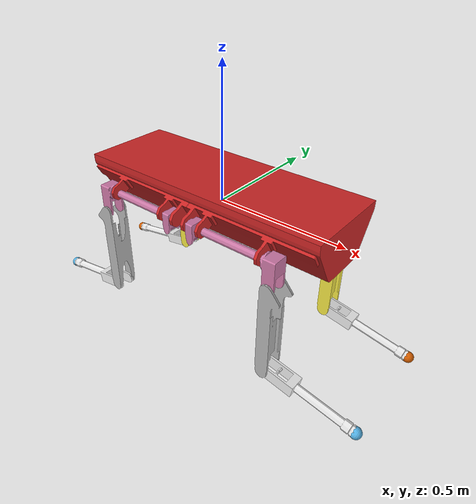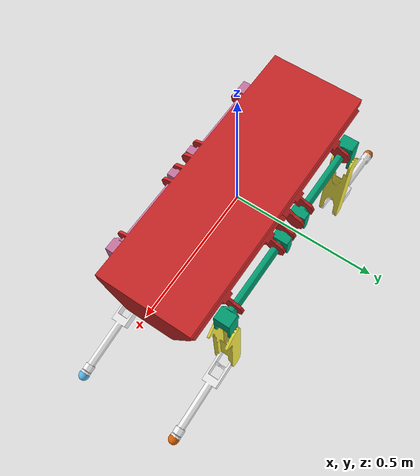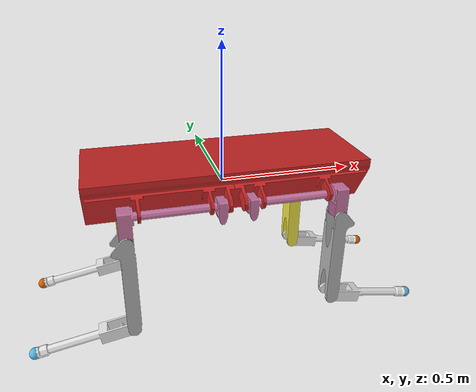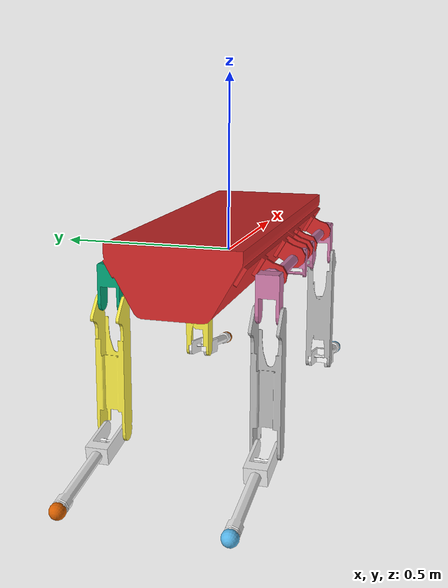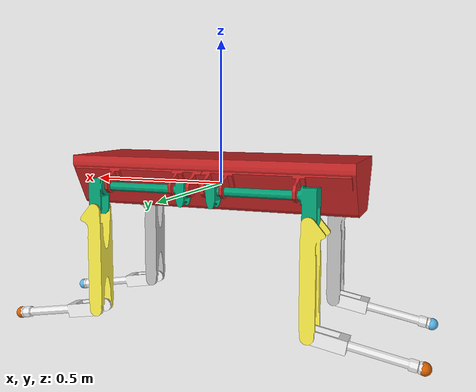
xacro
<?xml version="1.0"?>

<robot name="hyq" xmlns:xacro="http://www.ros.org/wiki/xacro">

  <xacro:property name="PI" value="3.1415926535897931"/>
  <xacro:property name="d_lr" value="0.414"/>
  <xacro:property name="d_fh" value="0.747"/>
  <xacro:property name="d_tbb" value="0.082"/>
  <xacro:property name="d_p1p2" value="0.35"/>

	<!-- HyQ trunk -->
	<xacro:include filename="$(find quadruped)/urdf/trunk.urdf.xacro"/>

	<!-- HyQ legs -->
	<xacro:include filename="$(find quadruped)/urdf/leg.urdf.xacro"/>
 	 <xacro:include filename="$(find quadruped)/urdf/quadruped.gazebo" />

	<!-- Using the macros defined above -->
	<!-- trunk -->
	<xacro:hyq_trunk name="base"/>

	<!-- LF leg -->
	<xacro:hyq_leg
		name="lf"
		parent="trunk"
		reflect_hip="1"
		reflect_upper="1"
		reflect_front="1">
		<origin xyz="${d_fh/2} ${d_lr/2} 0" rpy="0 ${PI/2} ${PI}"/>
	</xacro:hyq_leg>

	<!-- RF leg -->
	<xacro:hyq_leg
		name="rf"
		parent="trunk"
		reflect_hip="-1"
		reflect_upper="-1"
		reflect_front="1">
		<origin xyz="${d_fh/2} ${-d_lr/2} 0" rpy="0 ${PI/2} 0"/>
	</xacro:hyq_leg>

	<!-- LH leg -->
	<xacro:hyq_leg
		name="lh"
		parent="trunk"
		reflect_hip="-1"
		reflect_upper="1"
		reflect_front="-1">
		<origin xyz="${-d_fh/2} ${d_lr/2} 0" rpy="0 ${PI/2} ${PI}"/>
	</xacro:hyq_leg>

	<!-- RH leg -->
	<xacro:hyq_leg
		name="rh"
		parent="trunk"
		reflect_hip="1"
		reflect_upper="-1"
		reflect_front="-1">
		<origin xyz="${-d_fh/2} ${-d_lr/2} 0" rpy="0 ${PI/2} 0"/>
	</xacro:hyq_leg>

</robot>

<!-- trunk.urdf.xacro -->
<robot xmlns:xacro="http://www.ros.org/wiki/xacro">

	<!-- trunk macro definition -->
	<xacro:macro name="hyq_trunk" params="name">

		<!-- Floating-base Joint -->
		<joint name="floating_base" type="fixed">
			<origin xyz="0 0 0" rpy="0 0 0"/>
			<parent link="${name}"/>
			<child link="trunk"/>
		</joint>

		<!-- Footprint link -->
		<link name="${name}">
			<inertial >
				<origin xyz="0 0 0" rpy="0 0 0"/>
				<mass value="0.0001" />
				<inertia ixx="1.6e-08" ixy="0.0" ixz="0.0" iyy="1.6e-08" iyz="0.0" izz="1.6e-08"/>
			</inertial>
			<collision>
				<origin xyz="0 0 0" rpy="0 0 0"/>
				<geometry>
					<sphere radius="0.020"/>
				</geometry>
			</collision>

			<visual>
				<geometry>
					<cylinder length="0.01" radius="0.01"/>
				</geometry>
			</visual>
		</link>

		<!-- Trunk link -->
		<link name="trunk">
			<inertial>
				<origin xyz="0 0 0" rpy="0 0 0"/>
				<mass value="0.5" />
				<inertia ixx="0.140906974933" ixy="0.0" ixz="0.0" iyy="0.1529597616" iyz="0.0" izz="0.0218659333333"/>
			</inertial>
			<collision>
				<origin rpy="0.0 0.0 0.0" xyz="0.0 0.0 0.0"/>
			<geometry>
					<mesh filename="package://my_legged_robots_description/meshes/trunk/trunk.dae" scale="1 1 1"/>
			</geometry>
			</collision>
			<visual>
				<geometry>
					<mesh filename="package://my_legged_robots_description/meshes/trunk/trunk.dae" scale="1 1 1"/>
				</geometry>
			</visual>

		</link>

	</xacro:macro>

</robot>

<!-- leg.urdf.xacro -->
<robot xmlns:xacro="http://www.ros.org/wiki/xacro">

	<!-- leg macro definiction -->
	<xacro:macro name="hyq_leg" params="name parent *origin reflect_hip reflect_upper reflect_front">
		<!-- Joints -->
		<!-- Hip assembly joint -->
		<joint name="${name}_haa_joint" type="revolute">
			<xacro:insert_block name="origin"/>
			<parent link="${parent}"/>
			<child  link="${name}_hipassembly"/>
			<axis xyz="0 0 1"/>
			<limit effort="1.00" velocity="10" lower="${-7*PI/18}" upper="${PI/6}"/>
		</joint>

		<!-- Upper leg joint -->
		<joint name="${name}_hfe_joint" type="revolute">
			<origin xyz="${d_tbb} 0 0" rpy="${reflect_upper*PI/2} 0 0"/>
			<parent link="${name}_hipassembly"/>
			<child  link="${name}_upperleg"/>
			<axis xyz="0 0 1"/>
			<limit effort="1.00" velocity="10"
          lower="${-(1+reflect_front)*5*PI/36-(1-reflect_front)*7*PI/36}"
          upper="${(1-reflect_front)*5*PI/36+(1+reflect_front)*7*PI/36}"/>
		</joint>

		<!-- Lower leg joint -->
		<joint name="${name}_kfe_joint" type="revolute">
			<origin xyz="${d_p1p2} 0 0" rpy="0 0 0"/>
			<parent link="${name}_upperleg"/>
			<child  link="${name}_lowerleg"/>
			<axis xyz="0 0 1"/>
			<limit effort="1.00" velocity="10"
          lower="${-(1+reflect_front)*7*PI/18+(1-reflect_front)*PI/18}"
          upper="${(1-reflect_front)*7*PI/18-(1+reflect_front)*PI/18}"/>
		</joint>

		<!-- Foot joint -->
		<joint name="${name}_foot_joint" type="fixed">
			<origin xyz="0.35 0 0" rpy="${PI/2} 0 ${-PI/2}"/>
			<parent link="${name}_lowerleg"/>
			<child  link="${name}_foot"/>
		</joint>

		<!-- Links -->
		<!-- Hip assembly link -->
		<link name="${name}_hipassembly">
			<inertial>
				<origin xyz="0 0 0" rpy="0 0 0"/>
				<mass value="0.1168" />
				<inertia ixx="0.00140906974933" ixy="0.0" ixz="0.0" iyy="0.001529597616" iyz="0.0" izz="0.000218659333333"/>
			</inertial>
			<collision>
				<origin rpy="0.0 0.0 0.0" xyz="0.0 0.0 0.0"/>
			<geometry>
				<mesh filename="package://my_legged_robots_description/meshes/leg/hipassembly.dae" scale="1 1 1"/>
			</geometry>
			</collision>
			<visual>
				<origin xyz="0 0 0" rpy="${(1-reflect_hip)*PI/2} 0 0"/>
				<geometry>
					<mesh filename="package://my_legged_robots_description/meshes/leg/hipassembly.dae" scale="1 1 1"/>
				</geometry>
			</visual>
		</link>

		<!-- Upper leg link -->
		<link name="${name}_upperleg">
			<inertial>
				<origin xyz="0 0 0" rpy="0 0 0"/>
				<mass value="0.1168" />
				<inertia ixx="0.000119502849333" ixy="0.0" ixz="0.0" iyy="0.00158478921733" iyz="0.0" izz="0.00158585686667"/>
			</inertial>
			<collision>
				<origin rpy="0.0 0.0 0.0" xyz="0.0 0.0 0.0"/>
			<geometry>
				<mesh filename="package://my_legged_robots_description/meshes/leg/upperleg.dae" scale="1 1 1"/>
			</geometry>
			</collision>
			<visual>
				<origin xyz="0 0 0" rpy="${(1-reflect_front)*PI/2} 0 0"/>
				<geometry>
					<mesh filename="package://my_legged_robots_description/meshes/leg/upperleg.dae" scale="1 1 1"/>
				</geometry>
			</visual>
		</link>

		<!-- Lower leg link -->
			<link name="${name}_lowerleg">
			<inertial>
				<origin xyz="0 0 0" rpy="0 0 0"/>
				<mass value="0.0292" />
				<inertia ixx="1.74153666667e-05" ixy="0.0" ixz="0.0" iyy="0.000370889177667" iyz="0.0" izz="0.000363771677667"/>
			</inertial>
			<collision>
				<origin rpy="0.0 0.0 0.0" xyz="0.0 0.0 0.0"/>
			<geometry>
				<mesh filename="package://my_legged_robots_description/meshes/leg/lowerleg.dae" scale="1 1 1"/>
			</geometry>
			</collision>
			<visual>
				<geometry>
					<mesh filename="package://my_legged_robots_description/meshes/leg/lowerleg.dae" scale="1 1 1"/>
				</geometry>
				<material name="white"/>
			</visual>
		</link>

		<!-- Foot link -->
		<link name="${name}_foot">
			<inertial >
				<origin xyz="0 0 0" rpy="0 0 0"/>
				<mass value="0.0001" />
				<inertia ixx="1.6e-08" ixy="0.0" ixz="0.0" iyy="1.6e-08" iyz="0.0" izz="1.6e-08"/>
			</inertial>
			<collision>
				<origin xyz="0 0 0" rpy="0 0 0"/>
				<geometry>
					<sphere radius="0.020"/>
				</geometry>
			</collision>
			<visual>
				<origin xyz="0.0 0.0 0.0" rpy="0.0 0.0 0.0"/>
				<geometry>
					<sphere radius="0.021"/>
				</geometry>
			</visual>
		</link>

	</xacro:macro>

</robot>
